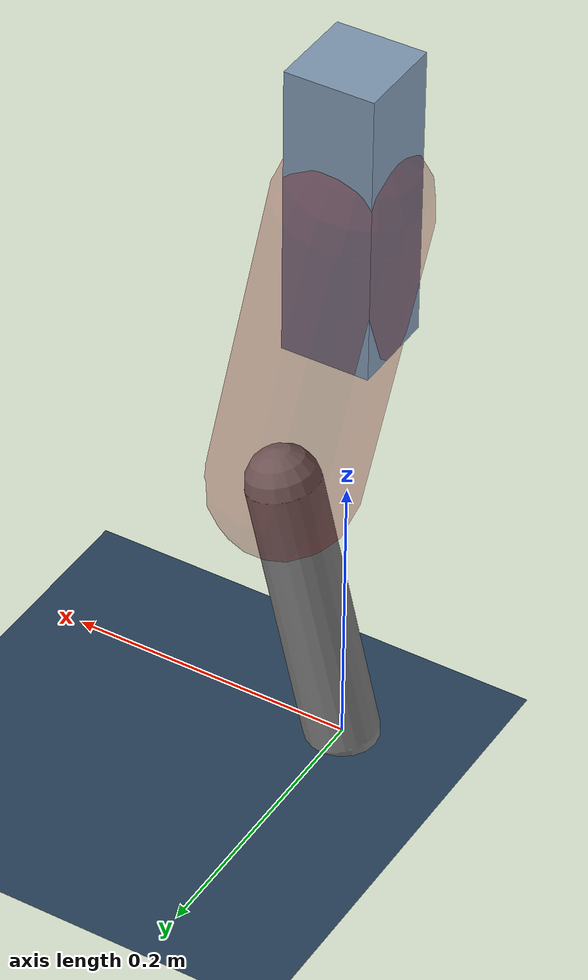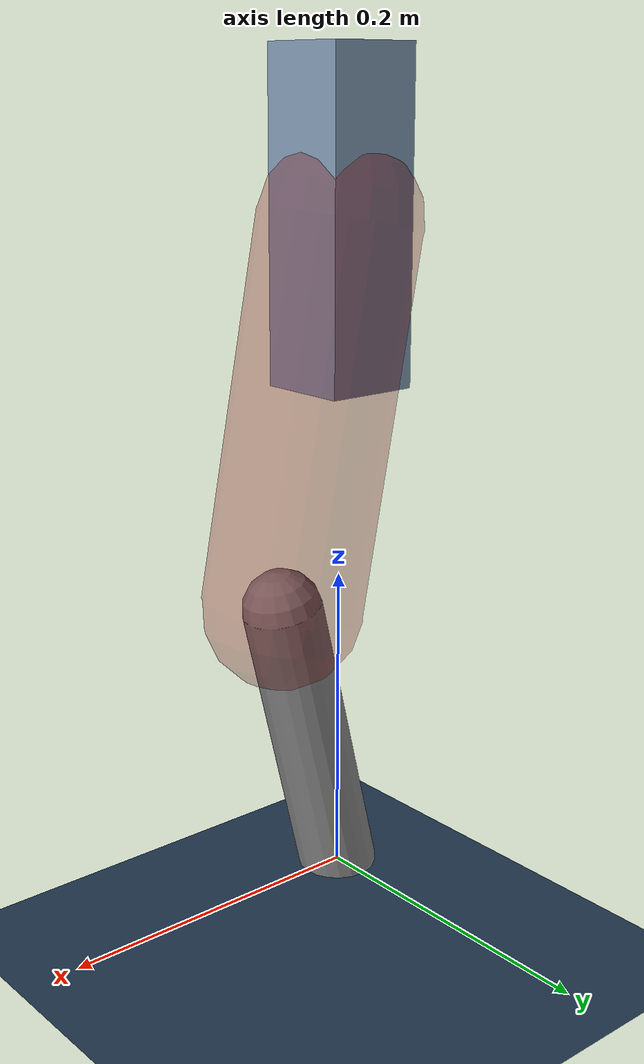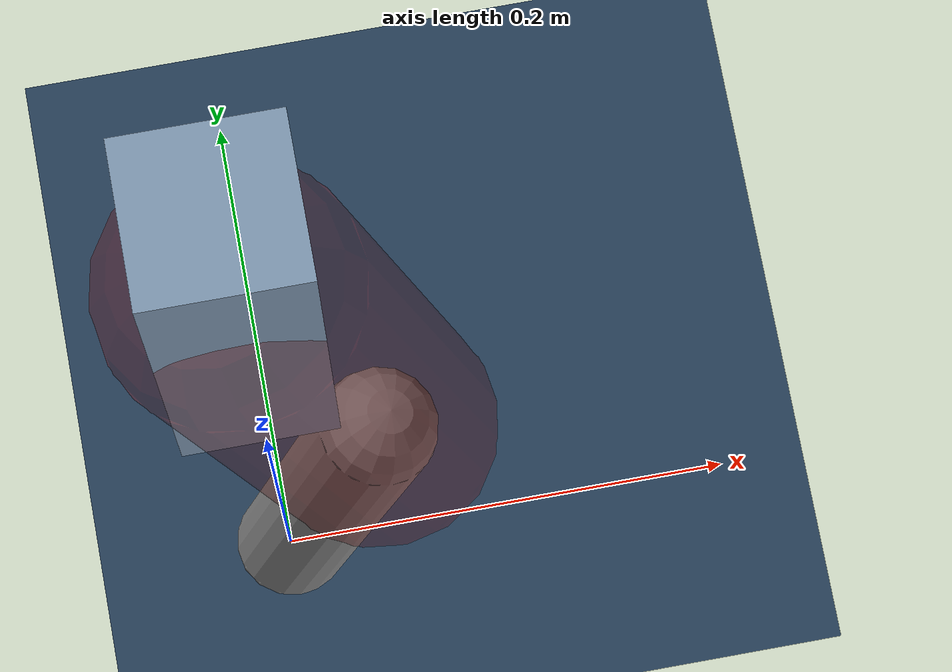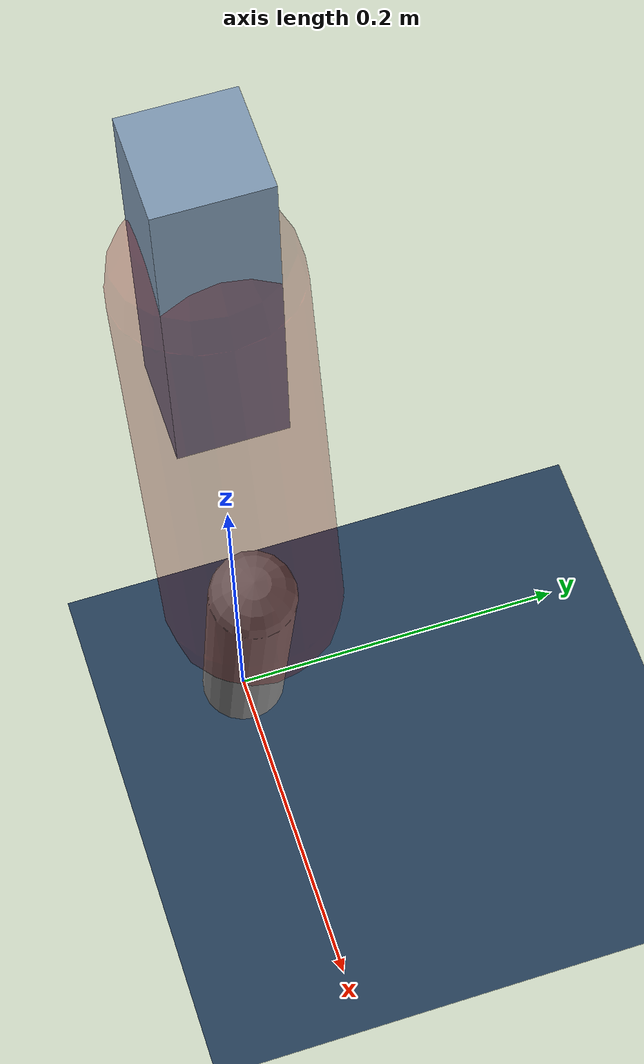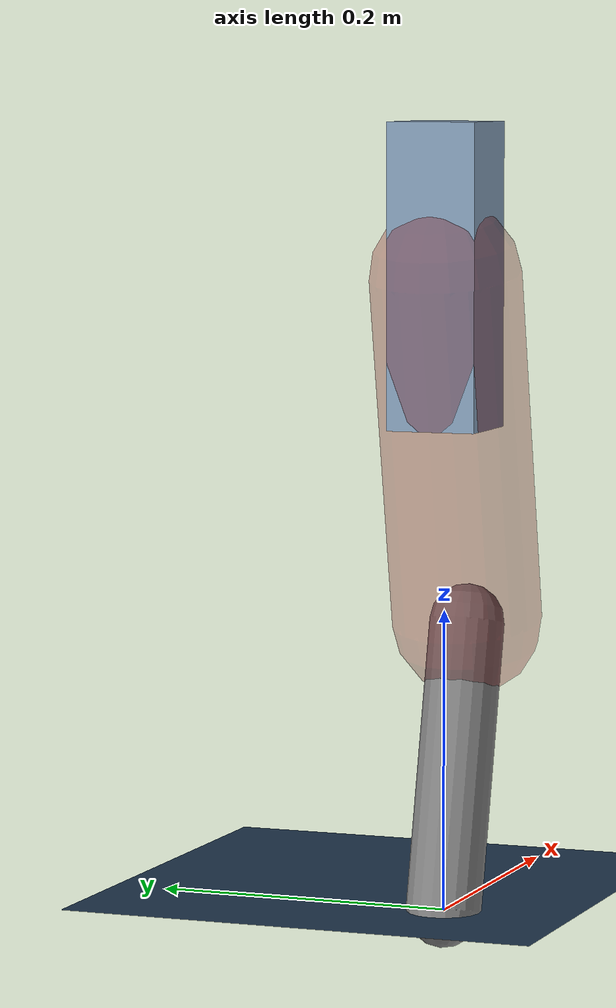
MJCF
<mujoco model="Hopper2D">
	<compiler inertiafromgeom="true" angle="radian" />
	<option timestep="0.001" integrator="implicit" cone="elliptic" solver="Newton" tolerance="1e-10" />

	<default>
		<geom contype="1" conaffinity="1" condim="3" friction="2 0.005 0.0001" solref="0.005 1" />
		<joint limited="true" damping="0.1" />
	</default>

	<asset>
		<texture name="skybox" type="skybox" builtin="gradient" rgb1=".4 .6 .8" rgb2="0 0 0" width="800" height="800" />
		<texture name="grid" type="2d" builtin="checker" rgb1=".1 .2 .3" rgb2=".2 .3 .4" width="300" height="300" mark="edge" markrgb=".2 .3 .4" />
		<material name="ground" texture="grid" texrepeat="1 1" texuniform="true" reflectance="0.1" />
		<material name="leg" rgba="0.5 0.6 0.7 1" />
	</asset>

	<worldbody>

		<geom name="floor" type="plane" size="5 5 0.25" material="ground" />

		<light directional="false" diffuse="0.8 0.8 0.8" specular="0.3 0.3 0.3" pos="0 0 2" dir="0 0 -1" />
		<light mode="targetbodycom" target="base" directional="false" diffuse="0.8 0.8 0.8" specular="0.3 0.3 0.3" pos="0 0 2" dir="0 0 -1" />

		<camera name="fixed" pos="0 -2 1" xyaxes="1 0 0 0 0 1" />
		<camera name="tracking" mode="trackcom" pos="0 -3 1" />

		<body name="root" pos="0 0 0.4196235056823536">
			<joint name="slide_x" type="slide" axis="1 0 0" range="-100 100" />
			<joint name="slide_z" type="slide" axis="0 0 1" range="0 10" />

			<body name="base" pos="0 0 0">
				<geom name="torso" type="box" size="0.03 0.03 0.1" mass="1.29" material="leg" />

				<body name="link1" pos="0 0 0" euler="0 1.3759644475307018 0">
					<joint type="hinge" axis="0 -1 0" pos="0 0 0" name="hinge1" limited="true" range="-3.14 3.14" stiffness="0" damping="0.1" />
					<geom name="thigh" type="capsule" fromto="0 0 0 0.2367017439276876 0 0" size="0.05" rgba="0.5 0 0 0.3" mass="0.8221245342119878" />

					<body name="link2" pos="0.2367017439276876 0 0" euler="0 0.4346601914162635 0">
						<joint type="hinge" axis="0 -1 0" pos="0 0 0" name="hinge2" limited="true" range="-3.14 3.14" stiffness="0" damping="0.1" />
						<geom name="shank" type="capsule" fromto="0 0 0 0.19292176175466602 0 0" size="0.025" mass="0.39492958557919944" />

					</body>
				</body>
			</body>
		</body>
	</worldbody>

	<actuator>
		<motor name="torque1" joint="hinge1" ctrlrange="-24.577819181982303 24.577819181982303" ctrllimited="true" gear="1" />
		<motor name="torque2" joint="hinge2" ctrlrange="-12.361170130967528 12.361170130967528" ctrllimited="true" gear="1" />
	</actuator>
</mujoco>
